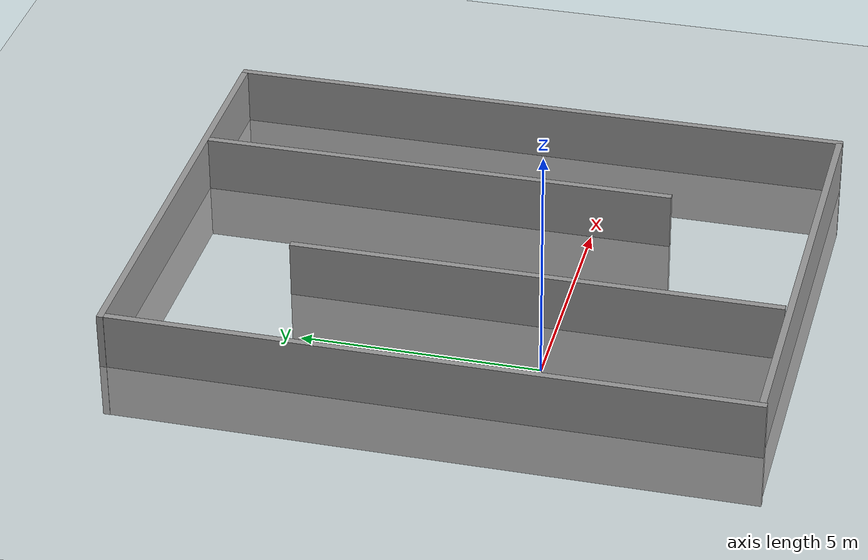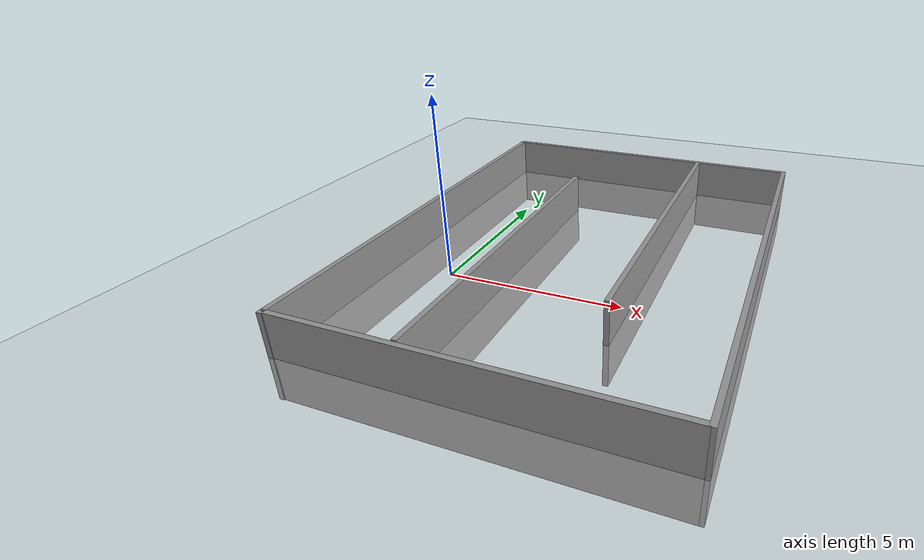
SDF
<sdf version="1.6">
 <world name="default">
  <light name="sun" type="directional">
   <pose>0 0 10 0 -0 0</pose>
   <diffuse>0.8 0.8 0.8 1</diffuse>
   <specular>0.2 0.2 0.2 1</specular>
   <attenuation>
    <range>1000</range>
    <constant>0.9</constant>
    <linear>0.01</linear>
    <quadratic>0.001</quadratic>
   </attenuation>
   <direction>-0.5 0.1 -0.9</direction>
   <spot><inner_angle>0</inner_angle><outer_angle>0</outer_angle><falloff>0</falloff></spot>
  </light>
  <model name="ground_plane">
   <static>1</static>
   <link name="link">
    <collision name="collision">
     <geometry><plane><normal>0 0 1</normal><size>100 100</size></plane></geometry>
     <surface><friction><ode><mu>100</mu><mu2>50</mu2></ode></friction></surface>
    </collision>
    <visual name="visual">
     <cast_shadows>0</cast_shadows>
     <geometry><plane><normal>0 0 1</normal><size>100 100</size></plane></geometry>
     <material>
      <script><uri>file://media/materials/scripts/gazebo.material</uri><name>Gazebo/Grey</name></script>
     </material>
    </visual>
   </link>
  </model>
  <gravity>0 0 -9.8</gravity>
  <magnetic_field>6e-06 2.3e-05 -4.2e-05</magnetic_field>
  <atmosphere type="adiabatic"/>
  <physics type="ode">
   <max_step_size>0.001</max_step_size>
   <real_time_factor>1</real_time_factor>
   <real_time_update_rate>1000</real_time_update_rate>
  </physics>
  <scene><ambient>0.4 0.4 0.4 1</ambient><background>0.7 0.7 0.7 1</background><shadows>1</shadows></scene>
  <audio><device>default</device></audio>
  <spherical_coordinates>
   <surface_model>EARTH_WGS84</surface_model>
   <latitude_deg>0</latitude_deg>
   <longitude_deg>0</longitude_deg>
   <elevation>0</elevation>
   <heading_deg>0</heading_deg>
  </spherical_coordinates>
  <model name="unit_box">
   <link name="link">
    <inertial>
     <mass>1</mass>
     <inertia>
      <ixx>0.166667</ixx>
      <ixy>0</ixy>
      <ixz>0</ixz>
      <iyy>0.166667</iyy>
      <iyz>0</iyz>
      <izz>0.166667</izz>
     </inertia>
    </inertial>
    <visual name="visual">
     <geometry><box><size>0.143129 13.4826 2.40022</size></box></geometry>
     <material>
      <script><name>Gazebo/Grey</name><uri>file://media/materials/scripts/gazebo.material</uri></script>
      <shader type="pixel"/>
     </material>
    </visual>
    <collision name="collision">
     <geometry><box><size>0.143129 13.4826 2.40022</size></box></geometry>
     <surface>
      <friction>
       <ode><mu>1</mu><mu2>1</mu2><fdir1>0 0 0</fdir1><slip1>0</slip1><slip2>0</slip2></ode>
       <torsional>
        <coefficient>1</coefficient>
        <patch_radius>0</patch_radius>
        <surface_radius>0</surface_radius>
        <use_patch_radius>1</use_patch_radius>
        <ode><slip>0</slip></ode>
       </torsional>
      </friction>
      <bounce><restitution_coefficient>0</restitution_coefficient><threshold>1e+06</threshold></bounce>
      <contact>
       <collide_without_contact>0</collide_without_contact>
       <collide_without_contact_bitmask>1</collide_without_contact_bitmask>
       <collide_bitmask>1</collide_bitmask>
       <ode>
        <soft_cfm>0</soft_cfm>
        <soft_erp>0.2</soft_erp>
        <kp>1e+13</kp>
        <kd>1</kd>
        <max_vel>0.01</max_vel>
        <min_depth>0</min_depth>
       </ode>
       <bullet>
        <split_impulse>1</split_impulse>
        <split_impulse_penetration_threshold>-0.01</split_impulse_penetration_threshold>
        <soft_cfm>0</soft_cfm>
        <soft_erp>0.2</soft_erp>
        <kp>1e+13</kp>
        <kd>1</kd>
       </bullet>
      </contact>
     </surface>
    </collision>
   </link>
   <static>1</static>
   <pose>-1.77441 1.91838 0 0 -0 0</pose>
  </model>
  <model name="unit_box_clone">
   <link name="link">
    <inertial>
     <mass>1</mass>
     <inertia>
      <ixx>0.166667</ixx>
      <ixy>0</ixy>
      <ixz>0</ixz>
      <iyy>0.166667</iyy>
      <iyz>0</iyz>
      <izz>0.166667</izz>
     </inertia>
    </inertial>
    <visual name="visual">
     <geometry><box><size>0.143129 9.88745 2.40022</size></box></geometry>
     <material>
      <script><name>Gazebo/Grey</name><uri>file://media/materials/scripts/gazebo.material</uri></script>
      <shader type="pixel"/>
     </material>
    </visual>
    <collision name="collision">
     <geometry><box><size>0.143129 9.88745 2.40022</size></box></geometry>
     <surface>
      <friction>
       <ode><mu>1</mu><mu2>1</mu2><fdir1>0 0 0</fdir1><slip1>0</slip1><slip2>0</slip2></ode>
       <torsional>
        <coefficient>1</coefficient>
        <patch_radius>0</patch_radius>
        <surface_radius>0</surface_radius>
        <use_patch_radius>1</use_patch_radius>
        <ode><slip>0</slip></ode>
       </torsional>
      </friction>
      <bounce><restitution_coefficient>0</restitution_coefficient><threshold>1e+06</threshold></bounce>
      <contact>
       <collide_without_contact>0</collide_without_contact>
       <collide_without_contact_bitmask>1</collide_without_contact_bitmask>
       <collide_bitmask>1</collide_bitmask>
       <ode>
        <soft_cfm>0</soft_cfm>
        <soft_erp>0.2</soft_erp>
        <kp>1e+13</kp>
        <kd>1</kd>
        <max_vel>0.01</max_vel>
        <min_depth>0</min_depth>
       </ode>
       <bullet>
        <split_impulse>1</split_impulse>
        <split_impulse_penetration_threshold>-0.01</split_impulse_penetration_threshold>
        <soft_cfm>0</soft_cfm>
        <soft_erp>0.2</soft_erp>
        <kp>1e+13</kp>
        <kd>1</kd>
       </bullet>
      </contact>
     </surface>
    </collision>
   </link>
   <static>1</static>
   <pose>3.12063 -4.76782 0 0 -0 1.56267</pose>
  </model>
  <model name="unit_box_clone_clone">
   <link name="link">
    <inertial>
     <mass>1</mass>
     <inertia>
      <ixx>0.166667</ixx>
      <ixy>0</ixy>
      <ixz>0</ixz>
      <iyy>0.166667</iyy>
      <iyz>0</iyz>
      <izz>0.166667</izz>
     </inertia>
    </inertial>
    <visual name="visual">
     <geometry><box><size>0.143129 9.88748 2.40022</size></box></geometry>
     <material>
      <script><name>Gazebo/Grey</name><uri>file://media/materials/scripts/gazebo.material</uri></script>
      <shader type="pixel"/>
     </material>
    </visual>
    <collision name="collision">
     <geometry><box><size>0.143129 9.88748 2.40022</size></box></geometry>
     <surface>
      <friction>
       <ode><mu>1</mu><mu2>1</mu2><fdir1>0 0 0</fdir1><slip1>0</slip1><slip2>0</slip2></ode>
       <torsional>
        <coefficient>1</coefficient>
        <patch_radius>0</patch_radius>
        <surface_radius>0</surface_radius>
        <use_patch_radius>1</use_patch_radius>
        <ode><slip>0</slip></ode>
       </torsional>
      </friction>
      <bounce><restitution_coefficient>0</restitution_coefficient><threshold>1e+06</threshold></bounce>
      <contact>
       <collide_without_contact>0</collide_without_contact>
       <collide_without_contact_bitmask>1</collide_without_contact_bitmask>
       <collide_bitmask>1</collide_bitmask>
       <ode>
        <soft_cfm>0</soft_cfm>
        <soft_erp>0.2</soft_erp>
        <kp>1e+13</kp>
        <kd>1</kd>
        <max_vel>0.01</max_vel>
        <min_depth>0</min_depth>
       </ode>
       <bullet>
        <split_impulse>1</split_impulse>
        <split_impulse_penetration_threshold>-0.01</split_impulse_penetration_threshold>
        <soft_cfm>0</soft_cfm>
        <soft_erp>0.2</soft_erp>
        <kp>1e+13</kp>
        <kd>1</kd>
       </bullet>
      </contact>
     </surface>
    </collision>
   </link>
   <static>1</static>
   <pose>3.08952 8.57878 0 0 -0 1.56267</pose>
  </model>
  <model name="unit_box_clone_0">
   <link name="link">
    <inertial>
     <mass>1</mass>
     <inertia>
      <ixx>0.166667</ixx>
      <ixy>0</ixy>
      <ixz>0</ixz>
      <iyy>0.166667</iyy>
      <iyz>0</iyz>
      <izz>0.166667</izz>
     </inertia>
    </inertial>
    <visual name="visual">
     <geometry><box><size>0.143129 13.4826 2.40022</size></box></geometry>
     <material>
      <script><name>Gazebo/Grey</name><uri>file://media/materials/scripts/gazebo.material</uri></script>
      <shader type="pixel"/>
     </material>
    </visual>
    <collision name="collision">
     <geometry><box><size>0.143129 13.4826 2.40022</size></box></geometry>
     <surface>
      <friction>
       <ode><mu>1</mu><mu2>1</mu2><fdir1>0 0 0</fdir1><slip1>0</slip1><slip2>0</slip2></ode>
       <torsional>
        <coefficient>1</coefficient>
        <patch_radius>0</patch_radius>
        <surface_radius>0</surface_radius>
        <use_patch_radius>1</use_patch_radius>
        <ode><slip>0</slip></ode>
       </torsional>
      </friction>
      <bounce><restitution_coefficient>0</restitution_coefficient><threshold>1e+06</threshold></bounce>
      <contact>
       <collide_without_contact>0</collide_without_contact>
       <collide_without_contact_bitmask>1</collide_without_contact_bitmask>
       <collide_bitmask>1</collide_bitmask>
       <ode>
        <soft_cfm>0</soft_cfm>
        <soft_erp>0.2</soft_erp>
        <kp>1e+13</kp>
        <kd>1</kd>
        <max_vel>0.01</max_vel>
        <min_depth>0</min_depth>
       </ode>
       <bullet>
        <split_impulse>1</split_impulse>
        <split_impulse_penetration_threshold>-0.01</split_impulse_penetration_threshold>
        <soft_cfm>0</soft_cfm>
        <soft_erp>0.2</soft_erp>
        <kp>1e+13</kp>
        <kd>1</kd>
       </bullet>
      </contact>
     </surface>
    </collision>
   </link>
   <static>1</static>
   <pose>8.0948 1.86275 0 0 -0 0</pose>
  </model>
  <model name="unit_box_clone_1">
   <link name="link">
    <inertial>
     <mass>1</mass>
     <inertia>
      <ixx>0.166667</ixx>
      <ixy>0</ixy>
      <ixz>0</ixz>
      <iyy>0.166667</iyy>
      <iyz>0</iyz>
      <izz>0.166667</izz>
     </inertia>
    </inertial>
    <visual name="visual">
     <geometry><box><size>0.143129 10.295 2.40022</size></box></geometry>
     <material>
      <script><name>Gazebo/Grey</name><uri>file://media/materials/scripts/gazebo.material</uri></script>
      <shader type="pixel"/>
     </material>
    </visual>
    <collision name="collision">
     <geometry><box><size>0.143129 10.295 2.40022</size></box></geometry>
     <surface>
      <friction>
       <ode><mu>1</mu><mu2>1</mu2><fdir1>0 0 0</fdir1><slip1>0</slip1><slip2>0</slip2></ode>
       <torsional>
        <coefficient>1</coefficient>
        <patch_radius>0</patch_radius>
        <surface_radius>0</surface_radius>
        <use_patch_radius>1</use_patch_radius>
        <ode><slip>0</slip></ode>
       </torsional>
      </friction>
      <bounce><restitution_coefficient>0</restitution_coefficient><threshold>1e+06</threshold></bounce>
      <contact>
       <collide_without_contact>0</collide_without_contact>
       <collide_without_contact_bitmask>1</collide_without_contact_bitmask>
       <collide_bitmask>1</collide_bitmask>
       <ode>
        <soft_cfm>0</soft_cfm>
        <soft_erp>0.2</soft_erp>
        <kp>1e+13</kp>
        <kd>1</kd>
        <max_vel>0.01</max_vel>
        <min_depth>0</min_depth>
       </ode>
       <bullet>
        <split_impulse>1</split_impulse>
        <split_impulse_penetration_threshold>-0.01</split_impulse_penetration_threshold>
        <soft_cfm>0</soft_cfm>
        <soft_erp>0.2</soft_erp>
        <kp>1e+13</kp>
        <kd>1</kd>
       </bullet>
      </contact>
     </surface>
    </collision>
   </link>
   <static>1</static>
   <pose>1.5865 0.499378 0 0 -0 0</pose>
  </model>
  <model name="unit_box_clone_1_clone">
   <link name="link">
    <inertial>
     <mass>1</mass>
     <inertia>
      <ixx>0.166667</ixx>
      <ixy>0</ixy>
      <ixz>0</ixz>
      <iyy>0.166667</iyy>
      <iyz>0</iyz>
      <izz>0.166667</izz>
     </inertia>
    </inertial>
    <visual name="visual">
     <geometry><box><size>0.143129 10.295 2.40022</size></box></geometry>
     <material>
      <script><name>Gazebo/Grey</name><uri>file://media/materials/scripts/gazebo.material</uri></script>
      <shader type="pixel"/>
     </material>
    </visual>
    <collision name="collision">
     <geometry><box><size>0.143129 10.295 2.40022</size></box></geometry>
     <surface>
      <friction>
       <ode><mu>1</mu><mu2>1</mu2><fdir1>0 0 0</fdir1><slip1>0</slip1><slip2>0</slip2></ode>
       <torsional>
        <coefficient>1</coefficient>
        <patch_radius>0</patch_radius>
        <surface_radius>0</surface_radius>
        <use_patch_radius>1</use_patch_radius>
        <ode><slip>0</slip></ode>
       </torsional>
      </friction>
      <bounce><restitution_coefficient>0</restitution_coefficient><threshold>1e+06</threshold></bounce>
      <contact>
       <collide_without_contact>0</collide_without_contact>
       <collide_without_contact_bitmask>1</collide_without_contact_bitmask>
       <collide_bitmask>1</collide_bitmask>
       <ode>
        <soft_cfm>0</soft_cfm>
        <soft_erp>0.2</soft_erp>
        <kp>1e+13</kp>
        <kd>1</kd>
        <max_vel>0.01</max_vel>
        <min_depth>0</min_depth>
       </ode>
       <bullet>
        <split_impulse>1</split_impulse>
        <split_impulse_penetration_threshold>-0.01</split_impulse_penetration_threshold>
        <soft_cfm>0</soft_cfm>
        <soft_erp>0.2</soft_erp>
        <kp>1e+13</kp>
        <kd>1</kd>
       </bullet>
      </contact>
     </surface>
    </collision>
   </link>
   <static>1</static>
   <pose>5.14296 3.47788 0 0 -0 0</pose>
  </model>
 </world>
</sdf>
